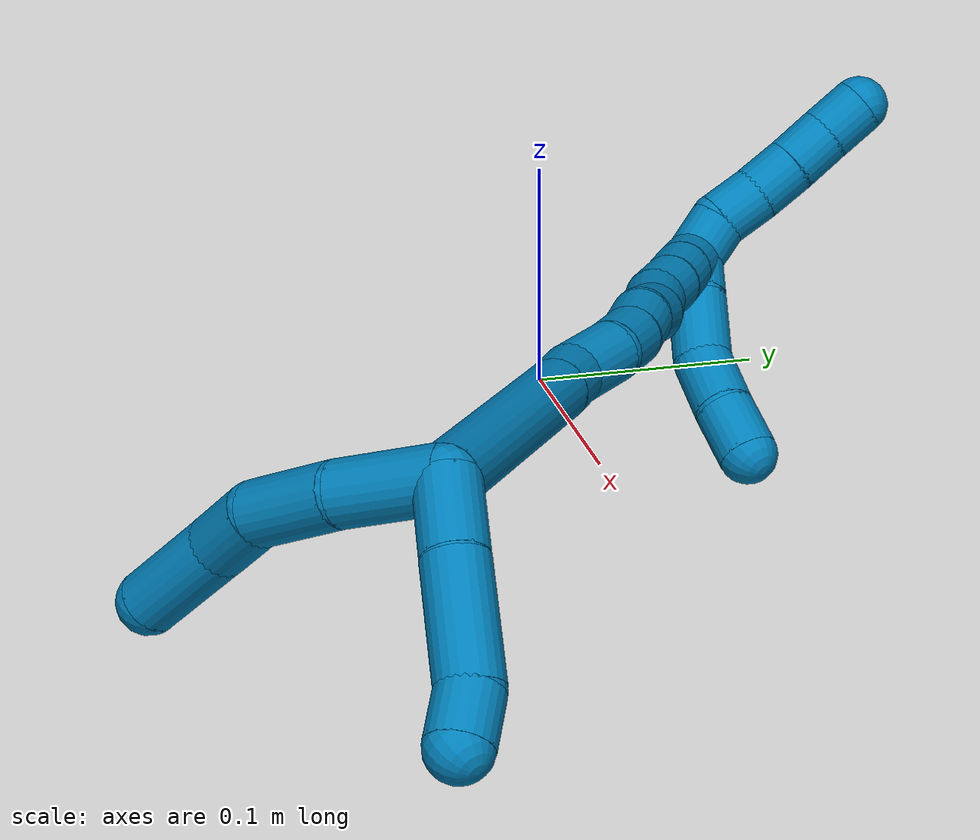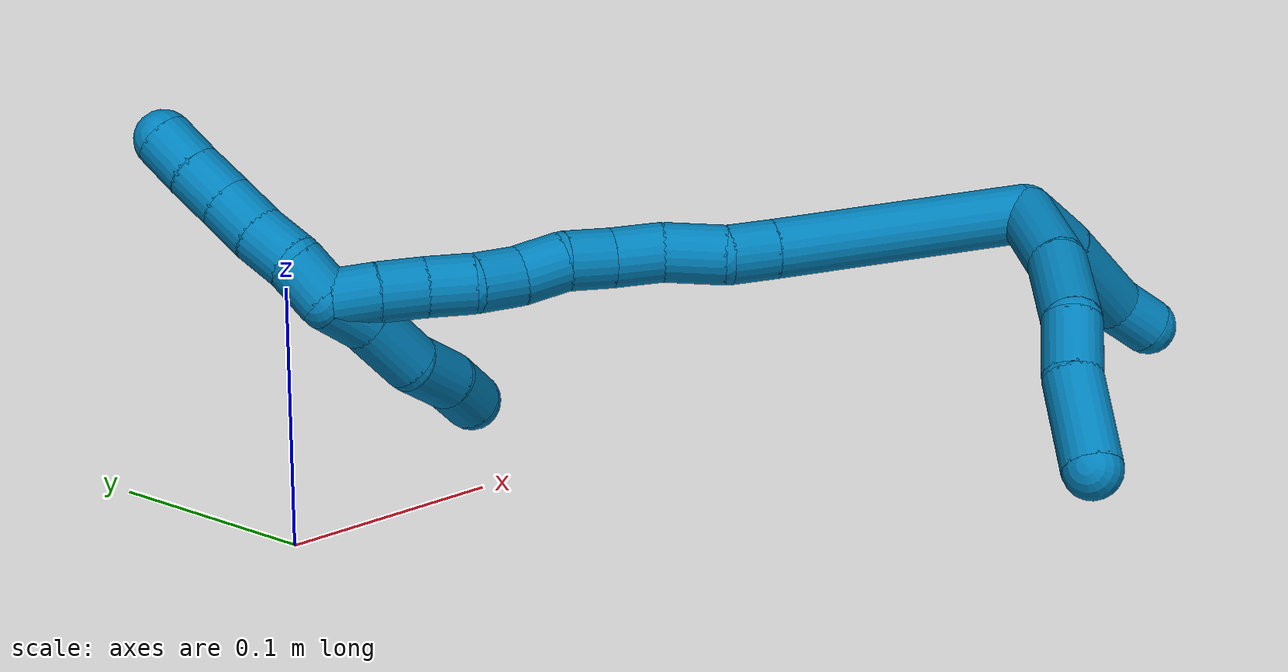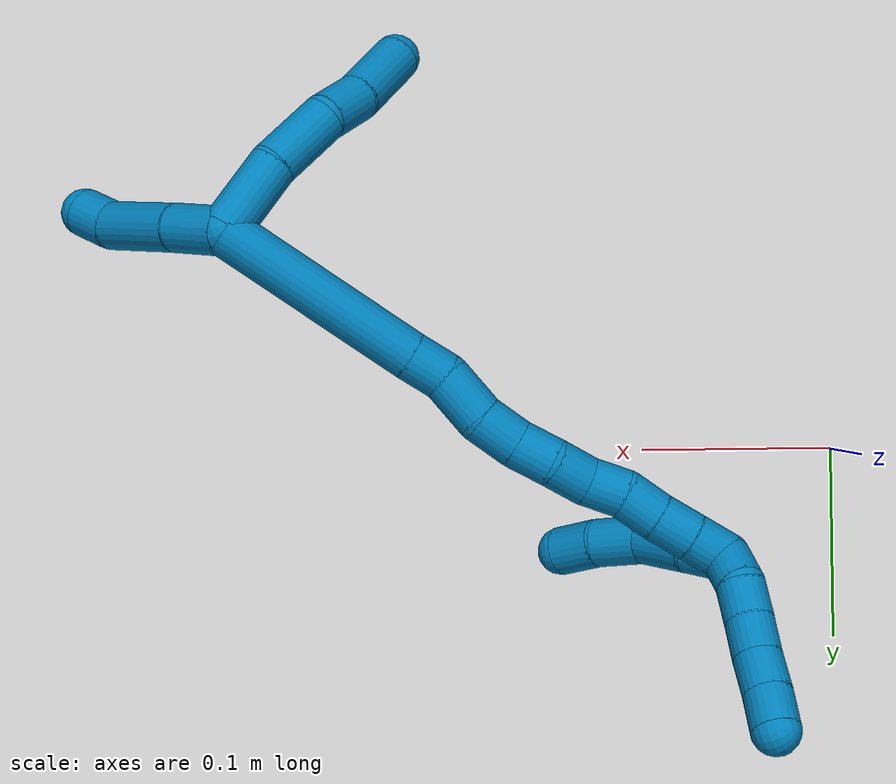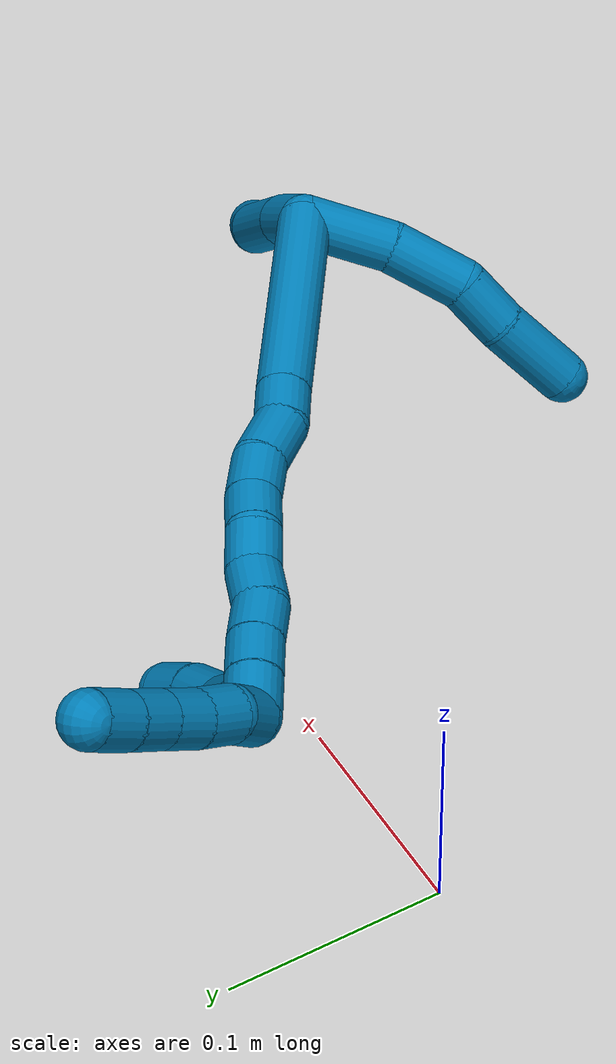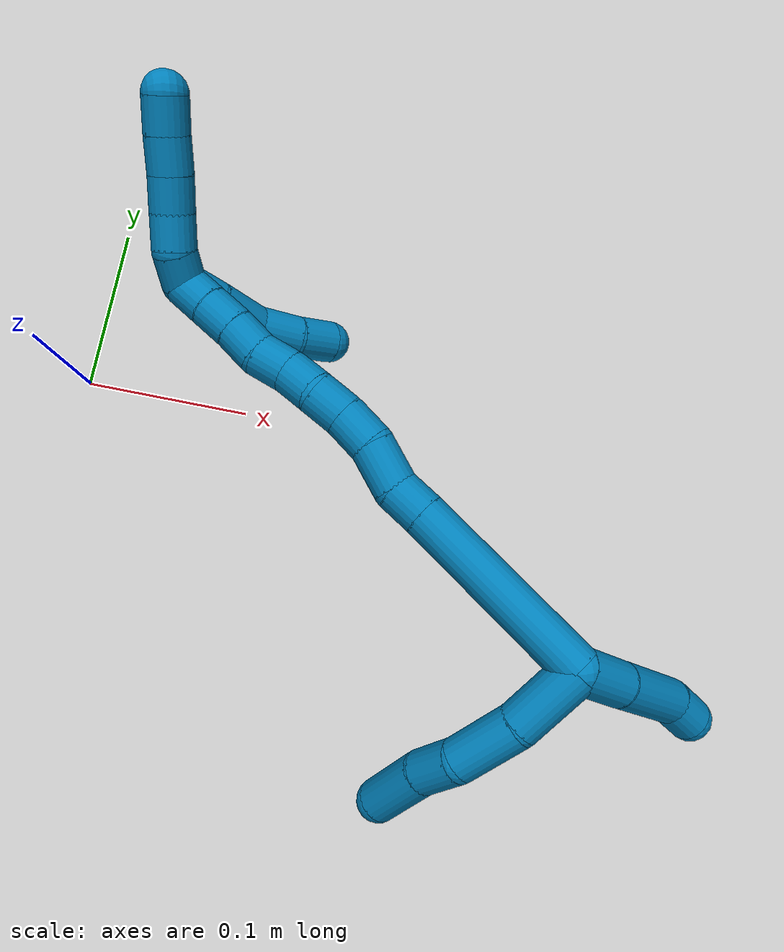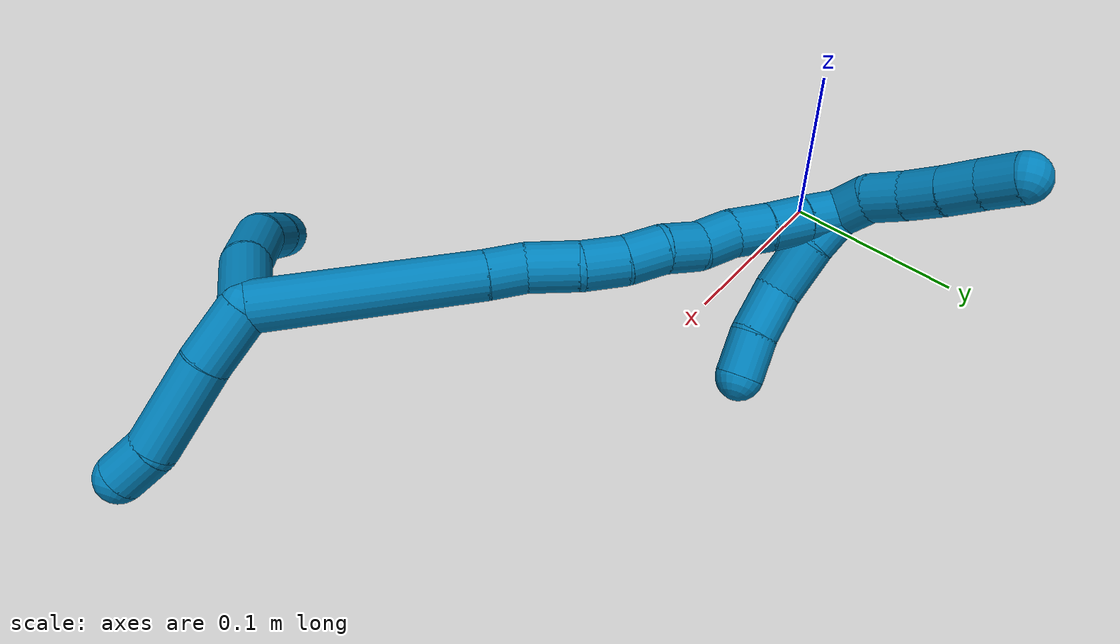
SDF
<sdf version="1.7">
 <world name="default">
  <model name="9">
   <static>0</static>
   <link name="9">
    <collision name="collision-cylinder-e_1_2_8">
     <pose>-0.000475 -0.016773 0.013253 0.902077 -0.022229 -0.010767</pose>
     <geometry><cylinder><radius>0.0125</radius><length>0.042764</length></cylinder></geometry>
     <surface>
      <friction><ode><mu>1.16</mu><mu2>1.16</mu2><slip1>0</slip1><slip2>0</slip2></ode></friction>
      <contact><ode><kp>1e+06</kp><kd>1</kd><max_vel>0</max_vel><min_depth>0.001</min_depth></ode></contact>
     </surface>
    </collision>
    <visual name="visual-cylinder-e_1_2_8">
     <pose>-0.000475 -0.016773 0.013253 0.902077 -0.022229 -0.010767</pose>
     <geometry><cylinder><radius>0.0125</radius><length>0.042764</length></cylinder></geometry>
     <material><ambient>0 0.490196 0.709804 1</ambient></material>
    </visual>
    <collision name="collision-cylinder-e_2_8_9">
     <pose>-0.005139 -0.048079 0.038411 0.88451 -0.219381 -0.10421</pose>
     <geometry><cylinder><radius>0.0125</radius><length>0.038497</length></cylinder></geometry>
     <surface>
      <friction><ode><mu>1.16</mu><mu2>1.16</mu2><slip1>0</slip1><slip2>0</slip2></ode></friction>
      <contact><ode><kp>1e+06</kp><kd>1</kd><max_vel>0</max_vel><min_depth>0.001</min_depth></ode></contact>
     </surface>
    </collision>
    <visual name="visual-cylinder-e_2_8_9">
     <pose>-0.005139 -0.048079 0.038411 0.88451 -0.219381 -0.10421</pose>
     <geometry><cylinder><radius>0.0125</radius><length>0.038497</length></cylinder></geometry>
     <material><ambient>0 0.490196 0.709804 1</ambient></material>
    </visual>
    <collision name="collision-cylinder-e_3_9_10">
     <pose>-0.015788 -0.073117 0.055682 1.09847 -0.501039 -0.31072</pose>
     <geometry><cylinder><radius>0.0125</radius><length>0.026897</length></cylinder></geometry>
     <surface>
      <friction><ode><mu>1.16</mu><mu2>1.16</mu2><slip1>0</slip1><slip2>0</slip2></ode></friction>
      <contact><ode><kp>1e+06</kp><kd>1</kd><max_vel>0</max_vel><min_depth>0.001</min_depth></ode></contact>
     </surface>
    </collision>
    <visual name="visual-cylinder-e_3_9_10">
     <pose>-0.015788 -0.073117 0.055682 1.09847 -0.501039 -0.31072</pose>
     <geometry><cylinder><radius>0.0125</radius><length>0.026897</length></cylinder></geometry>
     <material><ambient>0 0.490196 0.709804 1</ambient></material>
    </visual>
    <collision name="collision-cylinder-e_4_10_6">
     <pose>-0.029671 -0.101934 0.067919 1.21191 -0.362717 -0.252769</pose>
     <geometry><cylinder><radius>0.0125</radius><length>0.041842</length></cylinder></geometry>
     <surface>
      <friction><ode><mu>1.16</mu><mu2>1.16</mu2><slip1>0</slip1><slip2>0</slip2></ode></friction>
      <contact><ode><kp>1e+06</kp><kd>1</kd><max_vel>0</max_vel><min_depth>0.001</min_depth></ode></contact>
     </surface>
    </collision>
    <visual name="visual-cylinder-e_4_10_6">
     <pose>-0.029671 -0.101934 0.067919 1.21191 -0.362717 -0.252769</pose>
     <geometry><cylinder><radius>0.0125</radius><length>0.041842</length></cylinder></geometry>
     <material><ambient>0 0.490196 0.709804 1</ambient></material>
    </visual>
    <collision name="collision-cylinder-e_1_2_11">
     <pose>0.00112 -0.007117 -0.013983 2.67078 0.07127 0.295105</pose>
     <geometry><cylinder><radius>0.0125</radius><length>0.03146</length></cylinder></geometry>
     <surface>
      <friction><ode><mu>1.16</mu><mu2>1.16</mu2><slip1>0</slip1><slip2>0</slip2></ode></friction>
      <contact><ode><kp>1e+06</kp><kd>1</kd><max_vel>0</max_vel><min_depth>0.001</min_depth></ode></contact>
     </surface>
    </collision>
    <visual name="visual-cylinder-e_1_2_11">
     <pose>0.00112 -0.007117 -0.013983 2.67078 0.07127 0.295105</pose>
     <geometry><cylinder><radius>0.0125</radius><length>0.03146</length></cylinder></geometry>
     <material><ambient>0 0.490196 0.709804 1</ambient></material>
    </visual>
    <collision name="collision-cylinder-e_2_11_12">
     <pose>0.001907 -0.025626 -0.048737 2.63993 -0.014082 -0.054946</pose>
     <geometry><cylinder><radius>0.0125</radius><length>0.047383</length></cylinder></geometry>
     <surface>
      <friction><ode><mu>1.16</mu><mu2>1.16</mu2><slip1>0</slip1><slip2>0</slip2></ode></friction>
      <contact><ode><kp>1e+06</kp><kd>1</kd><max_vel>0</max_vel><min_depth>0.001</min_depth></ode></contact>
     </surface>
    </collision>
    <visual name="visual-cylinder-e_2_11_12">
     <pose>0.001907 -0.025626 -0.048737 2.63993 -0.014082 -0.054946</pose>
     <geometry><cylinder><radius>0.0125</radius><length>0.047383</length></cylinder></geometry>
     <material><ambient>0 0.490196 0.709804 1</ambient></material>
    </visual>
    <collision name="collision-cylinder-e_3_12_5">
     <pose>0.003783 -0.043726 -0.077382 2.43603 0.210494 0.558819</pose>
     <geometry><cylinder><radius>0.0125</radius><length>0.021156</length></cylinder></geometry>
     <surface>
      <friction><ode><mu>1.16</mu><mu2>1.16</mu2><slip1>0</slip1><slip2>0</slip2></ode></friction>
      <contact><ode><kp>1e+06</kp><kd>1</kd><max_vel>0</max_vel><min_depth>0.001</min_depth></ode></contact>
     </surface>
    </collision>
    <visual name="visual-cylinder-e_3_12_5">
     <pose>0.003783 -0.043726 -0.077382 2.43603 0.210494 0.558819</pose>
     <geometry><cylinder><radius>0.0125</radius><length>0.021156</length></cylinder></geometry>
     <material><ambient>0 0.490196 0.709804 1</ambient></material>
    </visual>
    <collision name="collision-cylinder-e_1_2_13">
     <pose>-0.043533 0.020191 0.027605 -0.631491 -0.904873 0.31494</pose>
     <geometry><cylinder><radius>0.0125</radius><length>0.110721</length></cylinder></geometry>
     <surface>
      <friction><ode><mu>1.16</mu><mu2>1.16</mu2><slip1>0</slip1><slip2>0</slip2></ode></friction>
      <contact><ode><kp>1e+06</kp><kd>1</kd><max_vel>0</max_vel><min_depth>0.001</min_depth></ode></contact>
     </surface>
    </collision>
    <visual name="visual-cylinder-e_1_2_13">
     <pose>-0.043533 0.020191 0.027605 -0.631491 -0.904873 0.31494</pose>
     <geometry><cylinder><radius>0.0125</radius><length>0.110721</length></cylinder></geometry>
     <material><ambient>0 0.490196 0.709804 1</ambient></material>
    </visual>
    <collision name="collision-cylinder-e_2_13_14">
     <pose>-0.094787 0.043948 0.060664 -0.579259 -0.869818 0.275147</pose>
     <geometry><cylinder><radius>0.0125</radius><length>0.020209</length></cylinder></geometry>
     <surface>
      <friction><ode><mu>1.16</mu><mu2>1.16</mu2><slip1>0</slip1><slip2>0</slip2></ode></friction>
      <contact><ode><kp>1e+06</kp><kd>1</kd><max_vel>0</max_vel><min_depth>0.001</min_depth></ode></contact>
     </surface>
    </collision>
    <visual name="visual-cylinder-e_2_13_14">
     <pose>-0.094787 0.043948 0.060664 -0.579259 -0.869818 0.275147</pose>
     <geometry><cylinder><radius>0.0125</radius><length>0.020209</length></cylinder></geometry>
     <material><ambient>0 0.490196 0.709804 1</ambient></material>
    </visual>
    <collision name="collision-cylinder-e_3_14_15">
     <pose>-0.112244 0.055542 0.070484 -1.07259 -0.817121 0.50373</pose>
     <geometry><cylinder><radius>0.0125</radius><length>0.026702</length></cylinder></geometry>
     <surface>
      <friction><ode><mu>1.16</mu><mu2>1.16</mu2><slip1>0</slip1><slip2>0</slip2></ode></friction>
      <contact><ode><kp>1e+06</kp><kd>1</kd><max_vel>0</max_vel><min_depth>0.001</min_depth></ode></contact>
     </surface>
    </collision>
    <visual name="visual-cylinder-e_3_14_15">
     <pose>-0.112244 0.055542 0.070484 -1.07259 -0.817121 0.50373</pose>
     <geometry><cylinder><radius>0.0125</radius><length>0.026702</length></cylinder></geometry>
     <material><ambient>0 0.490196 0.709804 1</ambient></material>
    </visual>
    <collision name="collision-cylinder-e_4_15_16">
     <pose>-0.130535 0.067953 0.080179 -0.688617 -0.891993 0.339603</pose>
     <geometry><cylinder><radius>0.0125</radius><length>0.021986</length></cylinder></geometry>
     <surface>
      <friction><ode><mu>1.16</mu><mu2>1.16</mu2><slip1>0</slip1><slip2>0</slip2></ode></friction>
      <contact><ode><kp>1e+06</kp><kd>1</kd><max_vel>0</max_vel><min_depth>0.001</min_depth></ode></contact>
     </surface>
    </collision>
    <visual name="visual-cylinder-e_4_15_16">
     <pose>-0.130535 0.067953 0.080179 -0.688617 -0.891993 0.339603</pose>
     <geometry><cylinder><radius>0.0125</radius><length>0.021986</length></cylinder></geometry>
     <material><ambient>0 0.490196 0.709804 1</ambient></material>
    </visual>
    <collision name="collision-cylinder-e_5_16_17">
     <pose>-0.146162 0.075969 0.091811 -0.522511 -0.771254 0.21623</pose>
     <geometry><cylinder><radius>0.0125</radius><length>0.020287</length></cylinder></geometry>
     <surface>
      <friction><ode><mu>1.16</mu><mu2>1.16</mu2><slip1>0</slip1><slip2>0</slip2></ode></friction>
      <contact><ode><kp>1e+06</kp><kd>1</kd><max_vel>0</max_vel><min_depth>0.001</min_depth></ode></contact>
     </surface>
    </collision>
    <visual name="visual-cylinder-e_5_16_17">
     <pose>-0.146162 0.075969 0.091811 -0.522511 -0.771254 0.21623</pose>
     <geometry><cylinder><radius>0.0125</radius><length>0.020287</length></cylinder></geometry>
     <material><ambient>0 0.490196 0.709804 1</ambient></material>
    </visual>
    <collision name="collision-cylinder-e_6_17_18">
     <pose>-0.161754 0.081612 0.103007 -0.390392 -1.01511 0.219039</pose>
     <geometry><cylinder><radius>0.0125</radius><length>0.020062</length></cylinder></geometry>
     <surface>
      <friction><ode><mu>1.16</mu><mu2>1.16</mu2><slip1>0</slip1><slip2>0</slip2></ode></friction>
      <contact><ode><kp>1e+06</kp><kd>1</kd><max_vel>0</max_vel><min_depth>0.001</min_depth></ode></contact>
     </surface>
    </collision>
    <visual name="visual-cylinder-e_6_17_18">
     <pose>-0.161754 0.081612 0.103007 -0.390392 -1.01511 0.219039</pose>
     <geometry><cylinder><radius>0.0125</radius><length>0.020062</length></cylinder></geometry>
     <material><ambient>0 0.490196 0.709804 1</ambient></material>
    </visual>
    <collision name="collision-cylinder-e_7_18_19">
     <pose>-0.177152 0.085828 0.114832 -0.30755 -0.757475 0.123207</pose>
     <geometry><cylinder><radius>0.0125</radius><length>0.020018</length></cylinder></geometry>
     <surface>
      <friction><ode><mu>1.16</mu><mu2>1.16</mu2><slip1>0</slip1><slip2>0</slip2></ode></friction>
      <contact><ode><kp>1e+06</kp><kd>1</kd><max_vel>0</max_vel><min_depth>0.001</min_depth></ode></contact>
     </surface>
    </collision>
    <visual name="visual-cylinder-e_7_18_19">
     <pose>-0.177152 0.085828 0.114832 -0.30755 -0.757475 0.123207</pose>
     <geometry><cylinder><radius>0.0125</radius><length>0.020018</length></cylinder></geometry>
     <material><ambient>0 0.490196 0.709804 1</ambient></material>
    </visual>
    <collision name="collision-cylinder-e_8_19_20">
     <pose>-0.191552 0.092218 0.126858 -0.687983 -0.850939 0.32186</pose>
     <geometry><cylinder><radius>0.0125</radius><length>0.020011</length></cylinder></geometry>
     <surface>
      <friction><ode><mu>1.16</mu><mu2>1.16</mu2><slip1>0</slip1><slip2>0</slip2></ode></friction>
      <contact><ode><kp>1e+06</kp><kd>1</kd><max_vel>0</max_vel><min_depth>0.001</min_depth></ode></contact>
     </surface>
    </collision>
    <visual name="visual-cylinder-e_8_19_20">
     <pose>-0.191552 0.092218 0.126858 -0.687983 -0.850939 0.32186</pose>
     <geometry><cylinder><radius>0.0125</radius><length>0.020011</length></cylinder></geometry>
     <material><ambient>0 0.490196 0.709804 1</ambient></material>
    </visual>
    <collision name="collision-cylinder-e_9_20_21">
     <pose>-0.206511 0.099976 0.137609 -0.563094 -0.838337 0.256335</pose>
     <geometry><cylinder><radius>0.0125</radius><length>0.020001</length></cylinder></geometry>
     <surface>
      <friction><ode><mu>1.16</mu><mu2>1.16</mu2><slip1>0</slip1><slip2>0</slip2></ode></friction>
      <contact><ode><kp>1e+06</kp><kd>1</kd><max_vel>0</max_vel><min_depth>0.001</min_depth></ode></contact>
     </surface>
    </collision>
    <visual name="visual-cylinder-e_9_20_21">
     <pose>-0.206511 0.099976 0.137609 -0.563094 -0.838337 0.256335</pose>
     <geometry><cylinder><radius>0.0125</radius><length>0.020001</length></cylinder></geometry>
     <material><ambient>0 0.490196 0.709804 1</ambient></material>
    </visual>
    <collision name="collision-cylinder-e_10_21_1">
     <pose>-0.221683 0.106823 0.148691 -0.543334 -0.884286 0.262222</pose>
     <geometry><cylinder><radius>0.0125</radius><length>0.020004</length></cylinder></geometry>
     <surface>
      <friction><ode><mu>1.16</mu><mu2>1.16</mu2><slip1>0</slip1><slip2>0</slip2></ode></friction>
      <contact><ode><kp>1e+06</kp><kd>1</kd><max_vel>0</max_vel><min_depth>0.001</min_depth></ode></contact>
     </surface>
    </collision>
    <visual name="visual-cylinder-e_10_21_1">
     <pose>-0.221683 0.106823 0.148691 -0.543334 -0.884286 0.262222</pose>
     <geometry><cylinder><radius>0.0125</radius><length>0.020004</length></cylinder></geometry>
     <material><ambient>0 0.490196 0.709804 1</ambient></material>
    </visual>
    <collision name="collision-cylinder-e_1_1_22">
     <pose>-0.22981 0.11962 0.157155 -1.2619 -0.039058 0.028536</pose>
     <geometry><cylinder><radius>0.0125</radius><length>0.02</length></cylinder></geometry>
     <surface>
      <friction><ode><mu>1.16</mu><mu2>1.16</mu2><slip1>0</slip1><slip2>0</slip2></ode></friction>
      <contact><ode><kp>1e+06</kp><kd>1</kd><max_vel>0</max_vel><min_depth>0.001</min_depth></ode></contact>
     </surface>
    </collision>
    <visual name="visual-cylinder-e_1_1_22">
     <pose>-0.22981 0.11962 0.157155 -1.2619 -0.039058 0.028536</pose>
     <geometry><cylinder><radius>0.0125</radius><length>0.02</length></cylinder></geometry>
     <material><ambient>0 0.490196 0.709804 1</ambient></material>
    </visual>
    <collision name="collision-cylinder-e_2_22_23">
     <pose>-0.232775 0.138795 0.160583 -1.5304 -0.260416 0.250212</pose>
     <geometry><cylinder><radius>0.0125</radius><length>0.02</length></cylinder></geometry>
     <surface>
      <friction><ode><mu>1.16</mu><mu2>1.16</mu2><slip1>0</slip1><slip2>0</slip2></ode></friction>
      <contact><ode><kp>1e+06</kp><kd>1</kd><max_vel>0</max_vel><min_depth>0.001</min_depth></ode></contact>
     </surface>
    </collision>
    <visual name="visual-cylinder-e_2_22_23">
     <pose>-0.232775 0.138795 0.160583 -1.5304 -0.260416 0.250212</pose>
     <geometry><cylinder><radius>0.0125</radius><length>0.02</length></cylinder></geometry>
     <material><ambient>0 0.490196 0.709804 1</ambient></material>
    </visual>
    <collision name="collision-cylinder-e_3_23_24">
     <pose>-0.237051 0.158292 0.161455 -1.52192 -0.170889 0.162771</pose>
     <geometry><cylinder><radius>0.0125</radius><length>0.02</length></cylinder></geometry>
     <surface>
      <friction><ode><mu>1.16</mu><mu2>1.16</mu2><slip1>0</slip1><slip2>0</slip2></ode></friction>
      <contact><ode><kp>1e+06</kp><kd>1</kd><max_vel>0</max_vel><min_depth>0.001</min_depth></ode></contact>
     </surface>
    </collision>
    <visual name="visual-cylinder-e_3_23_24">
     <pose>-0.237051 0.158292 0.161455 -1.52192 -0.170889 0.162771</pose>
     <geometry><cylinder><radius>0.0125</radius><length>0.02</length></cylinder></geometry>
     <material><ambient>0 0.490196 0.709804 1</ambient></material>
    </visual>
    <collision name="collision-cylinder-e_4_24_25">
     <pose>-0.240438 0.177943 0.162911 -1.47172 -0.169511 0.153563</pose>
     <geometry><cylinder><radius>0.0125</radius><length>0.02</length></cylinder></geometry>
     <surface>
      <friction><ode><mu>1.16</mu><mu2>1.16</mu2><slip1>0</slip1><slip2>0</slip2></ode></friction>
      <contact><ode><kp>1e+06</kp><kd>1</kd><max_vel>0</max_vel><min_depth>0.001</min_depth></ode></contact>
     </surface>
    </collision>
    <visual name="visual-cylinder-e_4_24_25">
     <pose>-0.240438 0.177943 0.162911 -1.47172 -0.169511 0.153563</pose>
     <geometry><cylinder><radius>0.0125</radius><length>0.02</length></cylinder></geometry>
     <material><ambient>0 0.490196 0.709804 1</ambient></material>
    </visual>
    <collision name="collision-cylinder-e_5_25_4">
     <pose>-0.243506 0.197639 0.164465 -1.5123 -0.138504 0.130653</pose>
     <geometry><cylinder><radius>0.0125</radius><length>0.02</length></cylinder></geometry>
     <surface>
      <friction><ode><mu>1.16</mu><mu2>1.16</mu2><slip1>0</slip1><slip2>0</slip2></ode></friction>
      <contact><ode><kp>1e+06</kp><kd>1</kd><max_vel>0</max_vel><min_depth>0.001</min_depth></ode></contact>
     </surface>
    </collision>
    <visual name="visual-cylinder-e_5_25_4">
     <pose>-0.243506 0.197639 0.164465 -1.5123 -0.138504 0.130653</pose>
     <geometry><cylinder><radius>0.0125</radius><length>0.02</length></cylinder></geometry>
     <material><ambient>0 0.490196 0.709804 1</ambient></material>
    </visual>
    <collision name="collision-cylinder-e_1_1_26">
     <pose>-0.227888 0.105086 0.145081 2.63494 0.147104 0.554577</pose>
     <geometry><cylinder><radius>0.0125</radius><length>0.020895</length></cylinder></geometry>
     <surface>
      <friction><ode><mu>1.16</mu><mu2>1.16</mu2><slip1>0</slip1><slip2>0</slip2></ode></friction>
      <contact><ode><kp>1e+06</kp><kd>1</kd><max_vel>0</max_vel><min_depth>0.001</min_depth></ode></contact>
     </surface>
    </collision>
    <visual name="visual-cylinder-e_1_1_26">
     <pose>-0.227888 0.105086 0.145081 2.63494 0.147104 0.554577</pose>
     <geometry><cylinder><radius>0.0125</radius><length>0.020895</length></cylinder></geometry>
     <material><ambient>0 0.490196 0.709804 1</ambient></material>
    </visual>
    <collision name="collision-cylinder-e_2_26_27">
     <pose>-0.226875 0.092045 0.123635 2.56749 -0.035073 -0.118684</pose>
     <geometry><cylinder><radius>0.0125</radius><length>0.029576</length></cylinder></geometry>
     <surface>
      <friction><ode><mu>1.16</mu><mu2>1.16</mu2><slip1>0</slip1><slip2>0</slip2></ode></friction>
      <contact><ode><kp>1e+06</kp><kd>1</kd><max_vel>0</max_vel><min_depth>0.001</min_depth></ode></contact>
     </surface>
    </collision>
    <visual name="visual-cylinder-e_2_26_27">
     <pose>-0.226875 0.092045 0.123635 2.56749 -0.035073 -0.118684</pose>
     <geometry><cylinder><radius>0.0125</radius><length>0.029576</length></cylinder></geometry>
     <material><ambient>0 0.490196 0.709804 1</ambient></material>
    </visual>
    <collision name="collision-cylinder-e_3_27_28">
     <pose>-0.226533 0.080756 0.098435 2.89184 0.065126 0.507798</pose>
     <geometry><cylinder><radius>0.0125</radius><length>0.026456</length></cylinder></geometry>
     <surface>
      <friction><ode><mu>1.16</mu><mu2>1.16</mu2><slip1>0</slip1><slip2>0</slip2></ode></friction>
      <contact><ode><kp>1e+06</kp><kd>1</kd><max_vel>0</max_vel><min_depth>0.001</min_depth></ode></contact>
     </surface>
    </collision>
    <visual name="visual-cylinder-e_3_27_28">
     <pose>-0.226533 0.080756 0.098435 2.89184 0.065126 0.507798</pose>
     <geometry><cylinder><radius>0.0125</radius><length>0.026456</length></cylinder></geometry>
     <material><ambient>0 0.490196 0.709804 1</ambient></material>
    </visual>
    <collision name="collision-cylinder-e_4_28_3">
     <pose>-0.227013 0.074914 0.074481 2.91448 -0.116467 -0.945128</pose>
     <geometry><cylinder><radius>0.0125</radius><length>0.023073</length></cylinder></geometry>
     <surface>
      <friction><ode><mu>1.16</mu><mu2>1.16</mu2><slip1>0</slip1><slip2>0</slip2></ode></friction>
      <contact><ode><kp>1e+06</kp><kd>1</kd><max_vel>0</max_vel><min_depth>0.001</min_depth></ode></contact>
     </surface>
    </collision>
    <visual name="visual-cylinder-e_4_28_3">
     <pose>-0.227013 0.074914 0.074481 2.91448 -0.116467 -0.945128</pose>
     <geometry><cylinder><radius>0.0125</radius><length>0.023073</length></cylinder></geometry>
     <material><ambient>0 0.490196 0.709804 1</ambient></material>
    </visual>
    <collision name="collision-sphere-3">
     <pose>-0.228353 0.072334 0.063317 0 -0 0</pose>
     <geometry><sphere><radius>0.0125</radius></sphere></geometry>
     <surface>
      <friction><ode><mu>1.16</mu><mu2>1.16</mu2><slip1>0</slip1><slip2>0</slip2></ode></friction>
      <contact><ode><kp>1e+06</kp><kd>1</kd><max_vel>0</max_vel><min_depth>0.001</min_depth></ode></contact>
     </surface>
    </collision>
    <visual name="visual-sphere-3">
     <pose>-0.228353 0.072334 0.063317 0 -0 0</pose>
     <geometry><sphere><radius>0.0125</radius></sphere></geometry>
     <material><ambient>0 0.490196 0.709804 1</ambient></material>
    </visual>
    <collision name="collision-sphere-28">
     <pose>-0.225672 0.077494 0.085645 0 -0 0</pose>
     <geometry><sphere><radius>0.0125</radius></sphere></geometry>
     <surface>
      <friction><ode><mu>1.16</mu><mu2>1.16</mu2><slip1>0</slip1><slip2>0</slip2></ode></friction>
      <contact><ode><kp>1e+06</kp><kd>1</kd><max_vel>0</max_vel><min_depth>0.001</min_depth></ode></contact>
     </surface>
    </collision>
    <visual name="visual-sphere-28">
     <pose>-0.225672 0.077494 0.085645 0 -0 0</pose>
     <geometry><sphere><radius>0.0125</radius></sphere></geometry>
     <material><ambient>0 0.490196 0.709804 1</ambient></material>
    </visual>
    <collision name="collision-sphere-27">
     <pose>-0.227394 0.084019 0.111226 0 -0 0</pose>
     <geometry><sphere><radius>0.0125</radius></sphere></geometry>
     <surface>
      <friction><ode><mu>1.16</mu><mu2>1.16</mu2><slip1>0</slip1><slip2>0</slip2></ode></friction>
      <contact><ode><kp>1e+06</kp><kd>1</kd><max_vel>0</max_vel><min_depth>0.001</min_depth></ode></contact>
     </surface>
    </collision>
    <visual name="visual-sphere-27">
     <pose>-0.227394 0.084019 0.111226 0 -0 0</pose>
     <geometry><sphere><radius>0.0125</radius></sphere></geometry>
     <material><ambient>0 0.490196 0.709804 1</ambient></material>
    </visual>
    <collision name="collision-sphere-26">
     <pose>-0.226357 0.100071 0.136045 0 -0 0</pose>
     <geometry><sphere><radius>0.0125</radius></sphere></geometry>
     <surface>
      <friction><ode><mu>1.16</mu><mu2>1.16</mu2><slip1>0</slip1><slip2>0</slip2></ode></friction>
      <contact><ode><kp>1e+06</kp><kd>1</kd><max_vel>0</max_vel><min_depth>0.001</min_depth></ode></contact>
     </surface>
    </collision>
    <visual name="visual-sphere-26">
     <pose>-0.226357 0.100071 0.136045 0 -0 0</pose>
     <geometry><sphere><radius>0.0125</radius></sphere></geometry>
     <material><ambient>0 0.490196 0.709804 1</ambient></material>
    </visual>
    <collision name="collision-sphere-4">
     <pose>-0.244886 0.207526 0.165044 0 -0 0</pose>
     <geometry><sphere><radius>0.0125</radius></sphere></geometry>
     <surface>
      <friction><ode><mu>1.16</mu><mu2>1.16</mu2><slip1>0</slip1><slip2>0</slip2></ode></friction>
      <contact><ode><kp>1e+06</kp><kd>1</kd><max_vel>0</max_vel><min_depth>0.001</min_depth></ode></contact>
     </surface>
    </collision>
    <visual name="visual-sphere-4">
     <pose>-0.244886 0.207526 0.165044 0 -0 0</pose>
     <geometry><sphere><radius>0.0125</radius></sphere></geometry>
     <material><ambient>0 0.490196 0.709804 1</ambient></material>
    </visual>
    <collision name="collision-sphere-25">
     <pose>-0.242125 0.187751 0.163886 0 -0 0</pose>
     <geometry><sphere><radius>0.0125</radius></sphere></geometry>
     <surface>
      <friction><ode><mu>1.16</mu><mu2>1.16</mu2><slip1>0</slip1><slip2>0</slip2></ode></friction>
      <contact><ode><kp>1e+06</kp><kd>1</kd><max_vel>0</max_vel><min_depth>0.001</min_depth></ode></contact>
     </surface>
    </collision>
    <visual name="visual-sphere-25">
     <pose>-0.242125 0.187751 0.163886 0 -0 0</pose>
     <geometry><sphere><radius>0.0125</radius></sphere></geometry>
     <material><ambient>0 0.490196 0.709804 1</ambient></material>
    </visual>
    <collision name="collision-sphere-24">
     <pose>-0.238751 0.168135 0.161936 0 -0 0</pose>
     <geometry><sphere><radius>0.0125</radius></sphere></geometry>
     <surface>
      <friction><ode><mu>1.16</mu><mu2>1.16</mu2><slip1>0</slip1><slip2>0</slip2></ode></friction>
      <contact><ode><kp>1e+06</kp><kd>1</kd><max_vel>0</max_vel><min_depth>0.001</min_depth></ode></contact>
     </surface>
    </collision>
    <visual name="visual-sphere-24">
     <pose>-0.238751 0.168135 0.161936 0 -0 0</pose>
     <geometry><sphere><radius>0.0125</radius></sphere></geometry>
     <material><ambient>0 0.490196 0.709804 1</ambient></material>
    </visual>
    <collision name="collision-sphere-23">
     <pose>-0.23535 0.14845 0.160974 0 -0 0</pose>
     <geometry><sphere><radius>0.0125</radius></sphere></geometry>
     <surface>
      <friction><ode><mu>1.16</mu><mu2>1.16</mu2><slip1>0</slip1><slip2>0</slip2></ode></friction>
      <contact><ode><kp>1e+06</kp><kd>1</kd><max_vel>0</max_vel><min_depth>0.001</min_depth></ode></contact>
     </surface>
    </collision>
    <visual name="visual-sphere-23">
     <pose>-0.23535 0.14845 0.160974 0 -0 0</pose>
     <geometry><sphere><radius>0.0125</radius></sphere></geometry>
     <material><ambient>0 0.490196 0.709804 1</ambient></material>
    </visual>
    <collision name="collision-sphere-22">
     <pose>-0.2302 0.12914 0.160193 0 -0 0</pose>
     <geometry><sphere><radius>0.0125</radius></sphere></geometry>
     <surface>
      <friction><ode><mu>1.16</mu><mu2>1.16</mu2><slip1>0</slip1><slip2>0</slip2></ode></friction>
      <contact><ode><kp>1e+06</kp><kd>1</kd><max_vel>0</max_vel><min_depth>0.001</min_depth></ode></contact>
     </surface>
    </collision>
    <visual name="visual-sphere-22">
     <pose>-0.2302 0.12914 0.160193 0 -0 0</pose>
     <geometry><sphere><radius>0.0125</radius></sphere></geometry>
     <material><ambient>0 0.490196 0.709804 1</ambient></material>
    </visual>
    <collision name="collision-sphere-1">
     <pose>-0.229419 0.110101 0.154118 0 -0 0</pose>
     <geometry><sphere><radius>0.0125</radius></sphere></geometry>
     <surface>
      <friction><ode><mu>1.16</mu><mu2>1.16</mu2><slip1>0</slip1><slip2>0</slip2></ode></friction>
      <contact><ode><kp>1e+06</kp><kd>1</kd><max_vel>0</max_vel><min_depth>0.001</min_depth></ode></contact>
     </surface>
    </collision>
    <visual name="visual-sphere-1">
     <pose>-0.229419 0.110101 0.154118 0 -0 0</pose>
     <geometry><sphere><radius>0.0125</radius></sphere></geometry>
     <material><ambient>0 0.490196 0.709804 1</ambient></material>
    </visual>
    <collision name="collision-sphere-21">
     <pose>-0.213947 0.103546 0.143264 0 -0 0</pose>
     <geometry><sphere><radius>0.0125</radius></sphere></geometry>
     <surface>
      <friction><ode><mu>1.16</mu><mu2>1.16</mu2><slip1>0</slip1><slip2>0</slip2></ode></friction>
      <contact><ode><kp>1e+06</kp><kd>1</kd><max_vel>0</max_vel><min_depth>0.001</min_depth></ode></contact>
     </surface>
    </collision>
    <visual name="visual-sphere-21">
     <pose>-0.213947 0.103546 0.143264 0 -0 0</pose>
     <geometry><sphere><radius>0.0125</radius></sphere></geometry>
     <material><ambient>0 0.490196 0.709804 1</ambient></material>
    </visual>
    <collision name="collision-sphere-11">
     <pose>0.00224 -0.014234 -0.027966 0 -0 0</pose>
     <geometry><sphere><radius>0.0125</radius></sphere></geometry>
     <surface>
      <friction><ode><mu>1.16</mu><mu2>1.16</mu2><slip1>0</slip1><slip2>0</slip2></ode></friction>
      <contact><ode><kp>1e+06</kp><kd>1</kd><max_vel>0</max_vel><min_depth>0.001</min_depth></ode></contact>
     </surface>
    </collision>
    <visual name="visual-sphere-11">
     <pose>0.00224 -0.014234 -0.027966 0 -0 0</pose>
     <geometry><sphere><radius>0.0125</radius></sphere></geometry>
     <material><ambient>0 0.490196 0.709804 1</ambient></material>
    </visual>
    <collision name="collision-sphere-6">
     <pose>-0.037094 -0.120248 0.074789 0 -0 0</pose>
     <geometry><sphere><radius>0.0125</radius></sphere></geometry>
     <surface>
      <friction><ode><mu>1.16</mu><mu2>1.16</mu2><slip1>0</slip1><slip2>0</slip2></ode></friction>
      <contact><ode><kp>1e+06</kp><kd>1</kd><max_vel>0</max_vel><min_depth>0.001</min_depth></ode></contact>
     </surface>
    </collision>
    <visual name="visual-sphere-6">
     <pose>-0.037094 -0.120248 0.074789 0 -0 0</pose>
     <geometry><sphere><radius>0.0125</radius></sphere></geometry>
     <material><ambient>0 0.490196 0.709804 1</ambient></material>
    </visual>
    <collision name="collision-sphere-10">
     <pose>-0.022248 -0.083621 0.061049 0 -0 0</pose>
     <geometry><sphere><radius>0.0125</radius></sphere></geometry>
     <surface>
      <friction><ode><mu>1.16</mu><mu2>1.16</mu2><slip1>0</slip1><slip2>0</slip2></ode></friction>
      <contact><ode><kp>1e+06</kp><kd>1</kd><max_vel>0</max_vel><min_depth>0.001</min_depth></ode></contact>
     </surface>
    </collision>
    <visual name="visual-sphere-10">
     <pose>-0.022248 -0.083621 0.061049 0 -0 0</pose>
     <geometry><sphere><radius>0.0125</radius></sphere></geometry>
     <material><ambient>0 0.490196 0.709804 1</ambient></material>
    </visual>
    <collision name="collision-sphere-9">
     <pose>-0.009328 -0.062612 0.050316 0 -0 0</pose>
     <geometry><sphere><radius>0.0125</radius></sphere></geometry>
     <surface>
      <friction><ode><mu>1.16</mu><mu2>1.16</mu2><slip1>0</slip1><slip2>0</slip2></ode></friction>
      <contact><ode><kp>1e+06</kp><kd>1</kd><max_vel>0</max_vel><min_depth>0.001</min_depth></ode></contact>
     </surface>
    </collision>
    <visual name="visual-sphere-9">
     <pose>-0.009328 -0.062612 0.050316 0 -0 0</pose>
     <geometry><sphere><radius>0.0125</radius></sphere></geometry>
     <material><ambient>0 0.490196 0.709804 1</ambient></material>
    </visual>
    <collision name="collision-sphere-2">
     <geometry><sphere><radius>0.0125</radius></sphere></geometry>
     <surface>
      <friction><ode><mu>1.16</mu><mu2>1.16</mu2><slip1>0</slip1><slip2>0</slip2></ode></friction>
      <contact><ode><kp>1e+06</kp><kd>1</kd><max_vel>0</max_vel><min_depth>0.001</min_depth></ode></contact>
     </surface>
    </collision>
    <visual name="visual-sphere-2">
     <geometry><sphere><radius>0.0125</radius></sphere></geometry>
     <material><ambient>0 0.490196 0.709804 1</ambient></material>
    </visual>
    <collision name="collision-sphere-19">
     <pose>-0.184029 0.088029 0.121763 0 -0 0</pose>
     <geometry><sphere><radius>0.0125</radius></sphere></geometry>
     <surface>
      <friction><ode><mu>1.16</mu><mu2>1.16</mu2><slip1>0</slip1><slip2>0</slip2></ode></friction>
      <contact><ode><kp>1e+06</kp><kd>1</kd><max_vel>0</max_vel><min_depth>0.001</min_depth></ode></contact>
     </surface>
    </collision>
    <visual name="visual-sphere-19">
     <pose>-0.184029 0.088029 0.121763 0 -0 0</pose>
     <geometry><sphere><radius>0.0125</radius></sphere></geometry>
     <material><ambient>0 0.490196 0.709804 1</ambient></material>
    </visual>
    <collision name="collision-sphere-8">
     <pose>-0.000951 -0.033545 0.026506 0 -0 0</pose>
     <geometry><sphere><radius>0.0125</radius></sphere></geometry>
     <surface>
      <friction><ode><mu>1.16</mu><mu2>1.16</mu2><slip1>0</slip1><slip2>0</slip2></ode></friction>
      <contact><ode><kp>1e+06</kp><kd>1</kd><max_vel>0</max_vel><min_depth>0.001</min_depth></ode></contact>
     </surface>
    </collision>
    <visual name="visual-sphere-8">
     <pose>-0.000951 -0.033545 0.026506 0 -0 0</pose>
     <geometry><sphere><radius>0.0125</radius></sphere></geometry>
     <material><ambient>0 0.490196 0.709804 1</ambient></material>
    </visual>
    <collision name="collision-sphere-12">
     <pose>0.001573 -0.037018 -0.069507 0 -0 0</pose>
     <geometry><sphere><radius>0.0125</radius></sphere></geometry>
     <surface>
      <friction><ode><mu>1.16</mu><mu2>1.16</mu2><slip1>0</slip1><slip2>0</slip2></ode></friction>
      <contact><ode><kp>1e+06</kp><kd>1</kd><max_vel>0</max_vel><min_depth>0.001</min_depth></ode></contact>
     </surface>
    </collision>
    <visual name="visual-sphere-12">
     <pose>0.001573 -0.037018 -0.069507 0 -0 0</pose>
     <geometry><sphere><radius>0.0125</radius></sphere></geometry>
     <material><ambient>0 0.490196 0.709804 1</ambient></material>
    </visual>
    <collision name="collision-sphere-5">
     <pose>0.005993 -0.050434 -0.085257 0 -0 0</pose>
     <geometry><sphere><radius>0.0125</radius></sphere></geometry>
     <surface>
      <friction><ode><mu>1.16</mu><mu2>1.16</mu2><slip1>0</slip1><slip2>0</slip2></ode></friction>
      <contact><ode><kp>1e+06</kp><kd>1</kd><max_vel>0</max_vel><min_depth>0.001</min_depth></ode></contact>
     </surface>
    </collision>
    <visual name="visual-sphere-5">
     <pose>0.005993 -0.050434 -0.085257 0 -0 0</pose>
     <geometry><sphere><radius>0.0125</radius></sphere></geometry>
     <material><ambient>0 0.490196 0.709804 1</ambient></material>
    </visual>
    <collision name="collision-sphere-13">
     <pose>-0.087065 0.040381 0.055211 0 -0 0</pose>
     <geometry><sphere><radius>0.0125</radius></sphere></geometry>
     <surface>
      <friction><ode><mu>1.16</mu><mu2>1.16</mu2><slip1>0</slip1><slip2>0</slip2></ode></friction>
      <contact><ode><kp>1e+06</kp><kd>1</kd><max_vel>0</max_vel><min_depth>0.001</min_depth></ode></contact>
     </surface>
    </collision>
    <visual name="visual-sphere-13">
     <pose>-0.087065 0.040381 0.055211 0 -0 0</pose>
     <geometry><sphere><radius>0.0125</radius></sphere></geometry>
     <material><ambient>0 0.490196 0.709804 1</ambient></material>
    </visual>
    <collision name="collision-sphere-14">
     <pose>-0.102509 0.047516 0.066118 0 -0 0</pose>
     <geometry><sphere><radius>0.0125</radius></sphere></geometry>
     <surface>
      <friction><ode><mu>1.16</mu><mu2>1.16</mu2><slip1>0</slip1><slip2>0</slip2></ode></friction>
      <contact><ode><kp>1e+06</kp><kd>1</kd><max_vel>0</max_vel><min_depth>0.001</min_depth></ode></contact>
     </surface>
    </collision>
    <visual name="visual-sphere-14">
     <pose>-0.102509 0.047516 0.066118 0 -0 0</pose>
     <geometry><sphere><radius>0.0125</radius></sphere></geometry>
     <material><ambient>0 0.490196 0.709804 1</ambient></material>
    </visual>
    <collision name="collision-sphere-15">
     <pose>-0.121979 0.063567 0.07485 0 -0 0</pose>
     <geometry><sphere><radius>0.0125</radius></sphere></geometry>
     <surface>
      <friction><ode><mu>1.16</mu><mu2>1.16</mu2><slip1>0</slip1><slip2>0</slip2></ode></friction>
      <contact><ode><kp>1e+06</kp><kd>1</kd><max_vel>0</max_vel><min_depth>0.001</min_depth></ode></contact>
     </surface>
    </collision>
    <visual name="visual-sphere-15">
     <pose>-0.121979 0.063567 0.07485 0 -0 0</pose>
     <geometry><sphere><radius>0.0125</radius></sphere></geometry>
     <material><ambient>0 0.490196 0.709804 1</ambient></material>
    </visual>
    <collision name="collision-sphere-16">
     <pose>-0.139091 0.072339 0.085508 0 -0 0</pose>
     <geometry><sphere><radius>0.0125</radius></sphere></geometry>
     <surface>
      <friction><ode><mu>1.16</mu><mu2>1.16</mu2><slip1>0</slip1><slip2>0</slip2></ode></friction>
      <contact><ode><kp>1e+06</kp><kd>1</kd><max_vel>0</max_vel><min_depth>0.001</min_depth></ode></contact>
     </surface>
    </collision>
    <visual name="visual-sphere-16">
     <pose>-0.139091 0.072339 0.085508 0 -0 0</pose>
     <geometry><sphere><radius>0.0125</radius></sphere></geometry>
     <material><ambient>0 0.490196 0.709804 1</ambient></material>
    </visual>
    <collision name="collision-sphere-17">
     <pose>-0.153232 0.079599 0.098114 0 -0 0</pose>
     <geometry><sphere><radius>0.0125</radius></sphere></geometry>
     <surface>
      <friction><ode><mu>1.16</mu><mu2>1.16</mu2><slip1>0</slip1><slip2>0</slip2></ode></friction>
      <contact><ode><kp>1e+06</kp><kd>1</kd><max_vel>0</max_vel><min_depth>0.001</min_depth></ode></contact>
     </surface>
    </collision>
    <visual name="visual-sphere-17">
     <pose>-0.153232 0.079599 0.098114 0 -0 0</pose>
     <geometry><sphere><radius>0.0125</radius></sphere></geometry>
     <material><ambient>0 0.490196 0.709804 1</ambient></material>
    </visual>
    <collision name="collision-sphere-18">
     <pose>-0.170275 0.083626 0.107901 0 -0 0</pose>
     <geometry><sphere><radius>0.0125</radius></sphere></geometry>
     <surface>
      <friction><ode><mu>1.16</mu><mu2>1.16</mu2><slip1>0</slip1><slip2>0</slip2></ode></friction>
      <contact><ode><kp>1e+06</kp><kd>1</kd><max_vel>0</max_vel><min_depth>0.001</min_depth></ode></contact>
     </surface>
    </collision>
    <visual name="visual-sphere-18">
     <pose>-0.170275 0.083626 0.107901 0 -0 0</pose>
     <geometry><sphere><radius>0.0125</radius></sphere></geometry>
     <material><ambient>0 0.490196 0.709804 1</ambient></material>
    </visual>
    <collision name="collision-sphere-20">
     <pose>-0.199076 0.096406 0.131954 0 -0 0</pose>
     <geometry><sphere><radius>0.0125</radius></sphere></geometry>
     <surface>
      <friction><ode><mu>1.16</mu><mu2>1.16</mu2><slip1>0</slip1><slip2>0</slip2></ode></friction>
      <contact><ode><kp>1e+06</kp><kd>1</kd><max_vel>0</max_vel><min_depth>0.001</min_depth></ode></contact>
     </surface>
    </collision>
    <visual name="visual-sphere-20">
     <pose>-0.199076 0.096406 0.131954 0 -0 0</pose>
     <geometry><sphere><radius>0.0125</radius></sphere></geometry>
     <material><ambient>0 0.490196 0.709804 1</ambient></material>
    </visual>
    <inertial>
     <pose>-0.110414 0.040593 0.068748 0 -0 0</pose>
     <mass>0.75</mass>
     <inertia>
      <ixx>0.000135</ixx>
      <ixy>0</ixy>
      <ixz>0</ixz>
      <iyy>0.000139</iyy>
      <iyz>0</iyz>
      <izz>9.1e-05</izz>
     </inertia>
    </inertial>
   </link>
   <pose>0.311288 -0.113868 0.095804 1.05034 -0.714126 -0.859371</pose>
  </model>
 </world>
</sdf>
